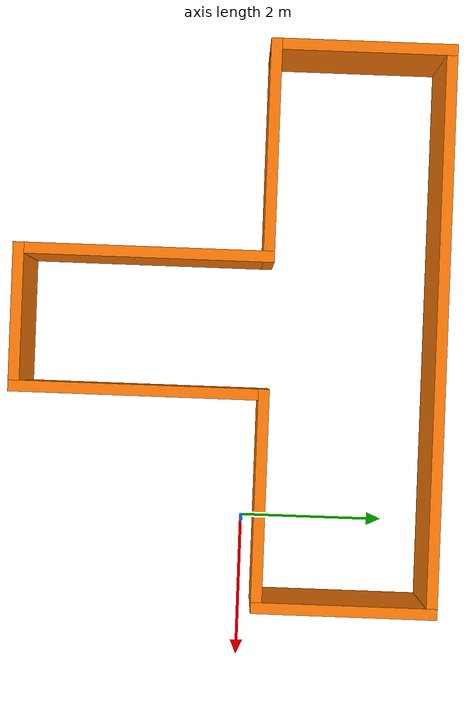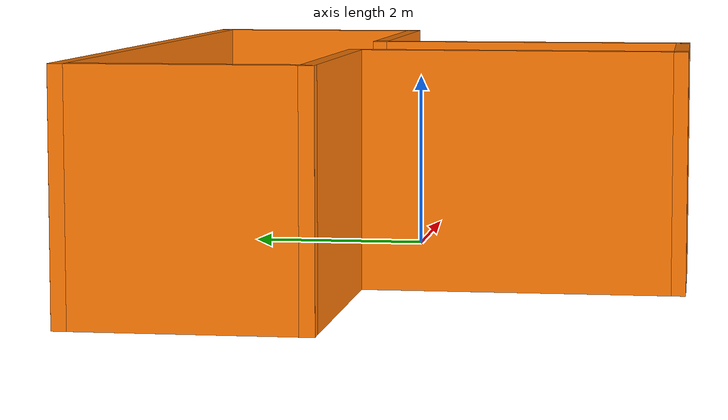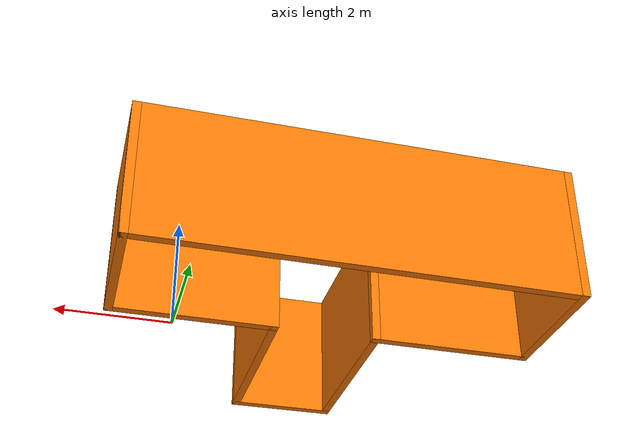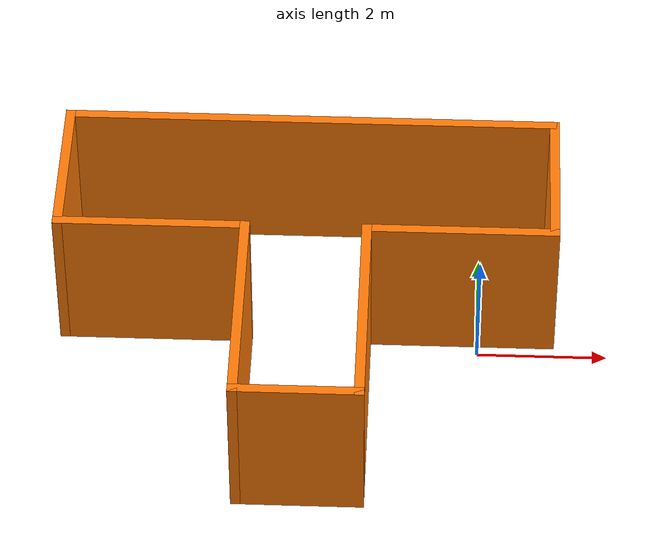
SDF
<?xml version='1.0'?>
<sdf version='1.6'>
  <model name='test_world'>
    <pose frame=''>-2.665 -0.262071 0 0 -0 0</pose>
    <link name='Wall_10'>
      <collision name='Wall_10_Collision'>
        <geometry>
          <box>
            <size>2.5 0.15 2.5</size>
          </box>
        </geometry>
        <pose frame=''>0 0 1.25 0 -0 0</pose>
      </collision>
      <visual name='Wall_10_Visual'>
        <pose frame=''>0 0 1.25 0 -0 0</pose>
        <geometry>
          <box>
            <size>2.5 0.15 2.5</size>
          </box>
        </geometry>
        <material>
          <script>
            <uri>file://media/materials/scripts/gazebo.material</uri>
            <name>Gazebo/Grey</name>
          </script>
          <ambient>0.996078 0.47451 0.0196078 1</ambient>
        </material>
      </visual>
      <pose frame=''>3.775 1.67507 0 0 0 -1.5708</pose>
    </link>
    <link name='Wall_11'>
      <collision name='Wall_11_Collision'>
        <geometry>
          <box>
            <size>3 0.15 2.5</size>
          </box>
        </geometry>
        <pose frame=''>0 0 1.25 0 -0 0</pose>
      </collision>
      <visual name='Wall_11_Visual'>
        <pose frame=''>0 0 1.25 0 -0 0</pose>
        <geometry>
          <box>
            <size>3 0.15 2.5</size>
          </box>
        </geometry>
        <material>
          <script>
            <uri>file://media/materials/scripts/gazebo.material</uri>
            <name>Gazebo/Grey</name>
          </script>
          <ambient>0.996078 0.47451 0.0196078 1</ambient>
        </material>
      </visual>
      <pose frame=''>2.35 0.500071 0 0 -0 3.14159</pose>
    </link>
    <link name='Wall_12'>
      <collision name='Wall_12_Collision'>
        <geometry>
          <box>
            <size>3.5 0.15 2.5</size>
          </box>
        </geometry>
        <pose frame=''>0 0 1.25 0 -0 0</pose>
      </collision>
      <visual name='Wall_12_Visual'>
        <pose frame=''>0 0 1.25 0 -0 0</pose>
        <geometry>
          <box>
            <size>3.5 0.15 2.5</size>
          </box>
        </geometry>
        <material>
          <script>
            <uri>file://media/materials/scripts/gazebo.material</uri>
            <name>Gazebo/Grey</name>
          </script>
          <ambient>0.996078 0.47451 0.0196078 1</ambient>
        </material>
      </visual>
      <pose frame=''>0.925 -1.17493 0 0 0 -1.5708</pose>
    </link>
    <link name='Wall_13'>
      <collision name='Wall_13_Collision'>
        <geometry>
          <box>
            <size>2 0.15 2.5</size>
          </box>
        </geometry>
        <pose frame=''>0 0 1.25 0 -0 0</pose>
      </collision>
      <visual name='Wall_13_Visual'>
        <pose frame=''>0 0 1.25 0 -0 0</pose>
        <geometry>
          <box>
            <size>2 0.15 2.5</size>
          </box>
        </geometry>
        <material>
          <script>
            <uri>file://media/materials/scripts/gazebo.material</uri>
            <name>Gazebo/Grey</name>
          </script>
          <ambient>0.996078 0.47451 0.0196078 1</ambient>
        </material>
      </visual>
      <pose frame=''>0 -2.84993 0 0 -0 3.14159</pose>
    </link>
    <link name='Wall_14'>
      <collision name='Wall_14_Collision'>
        <geometry>
          <box>
            <size>3.50075 0.15 2.5</size>
          </box>
        </geometry>
        <pose frame=''>0 0 1.25 0 -0 0</pose>
      </collision>
      <visual name='Wall_14_Visual'>
        <pose frame=''>0 0 1.25 0 -0 0</pose>
        <geometry>
          <box>
            <size>3.50075 0.15 2.5</size>
          </box>
        </geometry>
        <material>
          <script>
            <uri>file://media/materials/scripts/gazebo.material</uri>
            <name>Gazebo/Grey</name>
          </script>
          <ambient>0.996078 0.47451 0.0196078 1</ambient>
        </material>
      </visual>
      <pose frame=''>-0.925 -1.17493 0 0 -0 1.5708</pose>
    </link>
    <link name='Wall_15'>
      <collision name='Wall_15_Collision'>
        <geometry>
          <box>
            <size>3 0.15 2.5</size>
          </box>
        </geometry>
        <pose frame=''>0 0 1.25 0 -0 0</pose>
      </collision>
      <visual name='Wall_15_Visual'>
        <pose frame=''>0 0 1.25 0 -0 0</pose>
        <geometry>
          <box>
            <size>3 0.15 2.5</size>
          </box>
        </geometry>
        <material>
          <script>
            <uri>file://media/materials/scripts/gazebo.material</uri>
            <name>Gazebo/Grey</name>
          </script>
          <ambient>0.996078 0.47451 0.0196078 1</ambient>
        </material>
      </visual>
      <pose frame=''>-2.35 0.500071 0 0 -0 3.14159</pose>
    </link>
    <link name='Wall_16'>
      <collision name='Wall_16_Collision'>
        <geometry>
          <box>
            <size>2.50047 0.15 2.5</size>
          </box>
        </geometry>
        <pose frame=''>0 0 1.25 0 -0 0</pose>
      </collision>
      <visual name='Wall_16_Visual'>
        <pose frame=''>0 0 1.25 0 -0 0</pose>
        <geometry>
          <box>
            <size>2.50047 0.15 2.5</size>
          </box>
        </geometry>
        <material>
          <script>
            <uri>file://media/materials/scripts/gazebo.material</uri>
            <name>Gazebo/Grey</name>
          </script>
          <ambient>0.996078 0.47451 0.0196078 1</ambient>
        </material>
      </visual>
      <pose frame=''>-3.775 1.67507 0 0 -0 1.5708</pose>
    </link>
    <link name='Wall_9'>
      <collision name='Wall_9_Collision'>
        <geometry>
          <box>
            <size>7.70006 0.15 2.5</size>
          </box>
        </geometry>
        <pose frame=''>0 0 1.25 0 -0 0</pose>
      </collision>
      <visual name='Wall_9_Visual'>
        <pose frame=''>0 0 1.25 0 -0 0</pose>
        <geometry>
          <box>
            <size>7.70006 0.15 2.5</size>
          </box>
        </geometry>
        <material>
          <script>
            <uri>file://media/materials/scripts/gazebo.material</uri>
            <name>Gazebo/Grey</name>
          </script>
          <ambient>0.996078 0.47451 0.0196078 1</ambient>
        </material>
      </visual>
      <pose frame=''>0 2.85007 0 0 -0 0</pose>
    </link>
    <static>1</static>
  </model>
</sdf>
